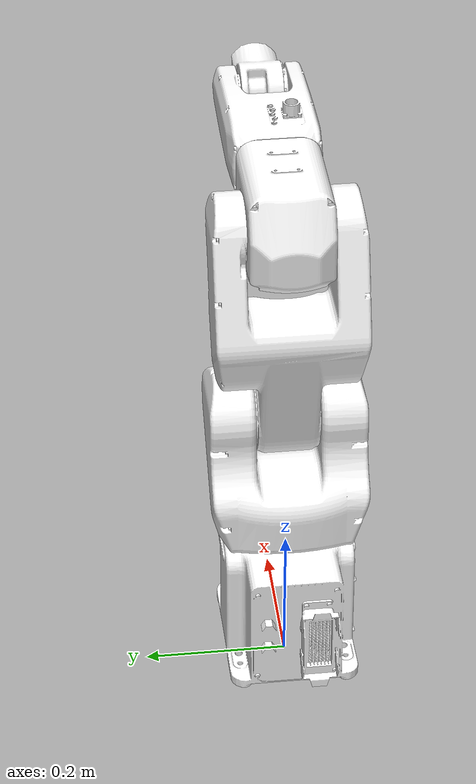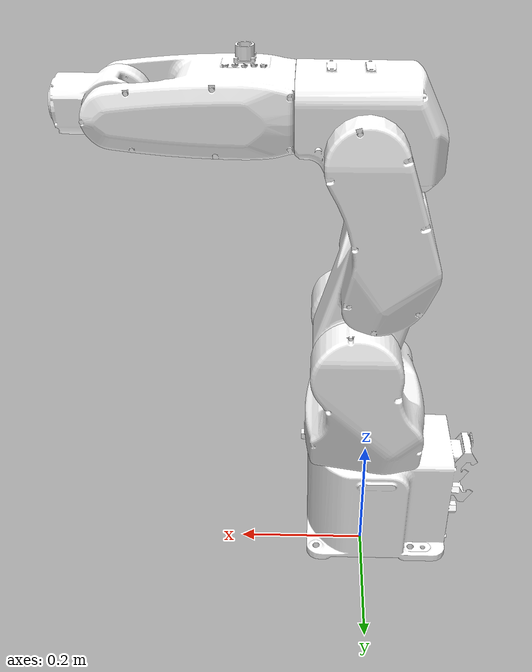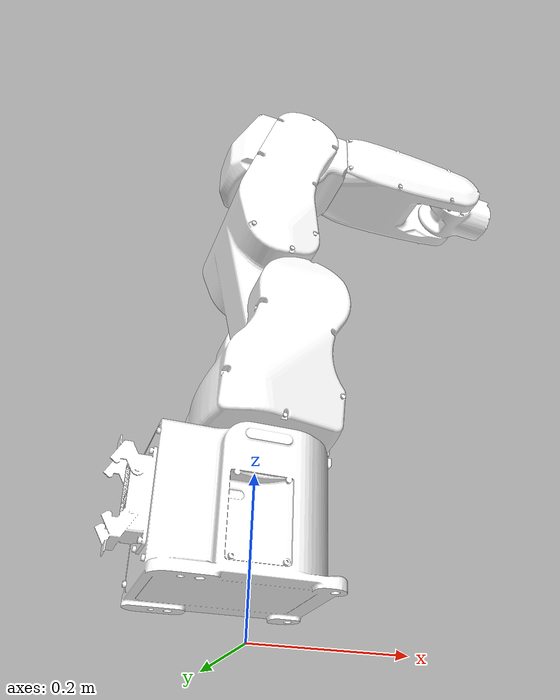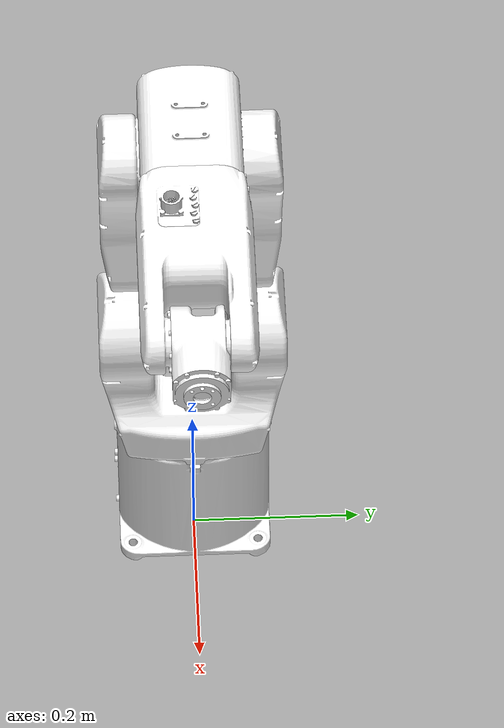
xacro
<?xml version="1.0"?>
<robot name="effortrobot" xmlns:xacro="http://www.ros.org/wiki/xacro">
 <xacro:property name="M_PI" value="3.1415926536"/>
 <link name="base_footprint"/>
  <joint name="joint_0" type="fixed">
    <origin xyz="0 0 0.0532" rpy="0 0 0" />
    <parent link="base_footprint" />
    <child link="base_link" />
  </joint>

  <link  name="base_link">
    <inertial>
      <origin xyz="-0.020139 -0.00029083 0.08761" rpy="0 0 0" />
      <mass  value="6.2633" />
      <inertia ixx="0.031742" ixy="-0.00025869" ixz="-0.0014605" iyy="0.040679" iyz="1.2511E-06" izz="0.035184" />
    </inertial>
    <visual>
      <origin xyz="0 0 0" rpy="0 0 0" />
      <geometry>
        <mesh  filename="package://effortrobot/meshes/base_link.STL" />
      </geometry>
      <material name="">
        <color rgba="1 1 1 1" />
      </material>
    </visual>
    <collision>
      <origin xyz="0 0 0"  rpy="0 0 0" />
      <geometry>
        <mesh  filename="package://effortrobot/meshes/base_link.STL" />
      </geometry>
    </collision>
  </link>
  <link name="link1">
    <inertial>
      <origin xyz="0.013985 0.097968 -0.00035209" rpy="0 0 0" />
      <mass  value="2.4535" />
      <inertia ixx="0.026746" ixy="0.0013345" ixz="3.9E-05" iyy="0.019626"  iyz="-5.0659E-06"  izz="0.01608" />
    </inertial>
    <visual>
      <origin  xyz="0 0 0"  rpy="0 0 0" />
      <geometry>
        <mesh  filename="package://effortrobot/meshes/link1.STL" />
      </geometry>
      <material name="">
        <color  rgba="1 1 1 1" />
      </material>
    </visual>
    <collision>
      <origin  xyz="0 0 0"  rpy="0 0 0" />
      <geometry>
        <mesh  filename="package://effortrobot/meshes/link1.STL" />
      </geometry>
    </collision>
  </link>
  <joint name="joint1" type="revolute">
    <origin xyz="0.025 0 0.1865" rpy="1.5708 0 3.1416" />
    <parent link="base_link" />
    <child  link="link1" />
    <axis xyz="0 0 -1" />
    <limit  lower="-3.14" upper="3.14"  effort="0" velocity="0" />
  </joint>
  <link name="link2">
    <inertial>
      <origin xyz="0.021883 0.1341 0.00022363" rpy="0 0 0" />
      <mass value="5.0459" />
      <inertia  ixx="0.064667"  ixy="-0.0013746"  ixz="2.9716E-05"  iyy="0.023288"  iyz="-1.4596E-05"  izz="0.053178" />
    </inertial>
    <visual>
      <origin xyz="0 0 0" rpy="0 0 0" />
      <geometry>
        <mesh  filename="package://effortrobot/meshes/link2.STL" />
      </geometry>
      <material name="">
        <color rgba="1 1 1 1" />
      </material>
    </visual>
    <collision>
      <origin xyz="0 0 0" rpy="0 0 0" />
      <geometry>
        <mesh filename="package://effortrobot/meshes/link2.STL" />
      </geometry>
    </collision>
  </link>
  <joint name="joint2" type="revolute">
    <origin xyz="0 0.172 0" rpy="0 0 0" />
    <parent link="link1" />
    <child link="link2" />
    <axis xyz="0 0 -1" />
    <limit lower="-3.14" upper="3.14" effort="0" velocity="0" />
  </joint>
  <link name="link3">
    <inertial>
      <origin  xyz="0.013477 0.014234 0.0011895"  rpy="0 0 0" />
      <mass value="2.1368" />
      <inertia  ixx="0.0051632" ixy="0.00051201"  ixz="3.036E-05" iyy="0.0062051"  iyz="1.8355E-05"  izz="0.006532" />
    </inertial>
    <visual>
      <origin xyz="0 0 0" rpy="0 0 0" />
      <geometry>
        <mesh filename="package://effortrobot/meshes/link3.STL" />
      </geometry>
      <material  name="">
        <color  rgba="1 1 1 1" />
      </material>
    </visual>
    <collision>
      <origin  xyz="0 0 0" rpy="0 0 0" />
      <geometry>
        <mesh filename="package://effortrobot/meshes/link3.STL" />
      </geometry>
    </collision>
  </link>
  <joint  name="joint3"  type="revolute">
    <origin xyz="0 0.295 0" rpy="0 0 0" />
    <parent link="link2" />
    <child link="link3" />
    <axis xyz="0 0 -1" />
    <limit lower="0" upper="3.14"  effort="0" velocity="0" />
  </joint>
  <link  name="link4">
    <inertial>
      <origin   xyz="-0.11577 0.0015716 -0.0018394"  rpy="0 0 0" />
      <mass value="0.9978" />
      <inertia  ixx="0.0025951"  ixy="-1.6888E-05"   ixz="-1.4384E-05" iyy="0.0069048" iyz="1.6198E-05"  izz="0.0056561" />
    </inertial>
    <visual>
      <origin xyz="0 0 0"  rpy="0 0 0" />
      <geometry>
        <mesh  filename="package://effortrobot/meshes/link4.STL" />
      </geometry>
      <material  name="">
        <color  rgba="1 1 1 1" />
      </material>
    </visual>
    <collision>
      <origin xyz="0 0 0"   rpy="0 0 0" />
      <geometry>
        <mesh filename="package://effortrobot/meshes/link4.STL" />
      </geometry>
    </collision>
  </link>
  <joint  name="joint4"  type="revolute">
    <origin  xyz="-0.075801 0.037406 0.0005"  rpy="0 0 0" />
    <parent  link="link3" />
    <child   link="link4" />
    <axis xyz="0.99999 -0.0053555 0" />
    <limit  lower="-3.14" upper="3.14" effort="0" velocity="0" />
  </joint>
  <link name="link5">
    <inertial>
      <origin  xyz="-0.023027 0.00013031 -0.0020434"  rpy="0 0 0" />
      <mass  value="0.36404" />
      <inertia  ixx="0.00023315"  ixy="7.616E-07"  ixz="2.5096E-05" iyy="0.00040368"  iyz="-2.4878E-07" izz="0.00042927" />
    </inertial>
    <visual>
      <origin  xyz="0 0 0" rpy="0 0 0" />
      <geometry>
        <mesh  filename="package://effortrobot/meshes/link5.STL" />
      </geometry>
      <material  name="">
        <color rgba="1 1 1 1" />
      </material>
    </visual>
    <collision>
      <origin  xyz="0 0 0" rpy="0 0 0" />
      <geometry>
        <mesh   filename="package://effortrobot/meshes/link5.STL" />
      </geometry>
    </collision>
  </link>
  <joint name="joint5"
    type="revolute">
    <origin  xyz="-0.2185 0.0011724 -0.0005" rpy="0 0 0" />
    <parent link="link4" />
    <child  link="link5" />
    <axis xyz="2.4265E-05 0.0045308 -0.99999" />
    <limit lower="-3.14" upper="3.14" effort="0" velocity="0" />
  </joint>
  <link  name="link6">
    <inertial>
      <origin  xyz="0.002248 -0.00037082 0.00049838" rpy="0 0 0" />
      <mass value="0.0039034" />
      <inertia  ixx="9.7517E-07"  ixy="-2.516E-09"  ixz="5.4388E-13" iyy="5.054E-07" iyz="1.0155E-10" izz="4.8297E-07" />
    </inertial>
    <visual>
      <origin  xyz="0 0 0"  rpy="0 0 0" />
      <geometry>
        <mesh filename="package://effortrobot/meshes/link6.STL" />
      </geometry>
      <material name="">
        <color  rgba="1 1 1 1" />
      </material>
    </visual>
    <collision>
      <origin  xyz="0 0 0"  rpy="0 0 0" />
      <geometry>
        <mesh  filename="package://effortrobot/meshes/link6.STL" />
      </geometry>
    </collision>
  </link>
  <joint name="joint6" type="revolute">
    <origin xyz="-0.078499 0.0004204 0" rpy="0 0 0" />
    <parent  link="link5" />
    <child link="link6" />
    <axis  xyz="-0.99999 0.0053555 0" />
    <limit   lower="-3.14"   upper="3.14"  effort="0" velocity="0" />
  </joint>

<!-- Transmissions for ROS Control -->
  <xacro:macro name="transmission_block" params="joint_name">
    <transmission name="tran1">
      <type>transmission_interface/SimpleTransmission</type>
      <joint name="${joint_name}">
        <hardwareInterface>hardware_interface/PositionJointInterface</hardwareInterface>
      </joint>
      <actuator name="motor1">
        <hardwareInterface>hardware_interface/PositionJointInterface</hardwareInterface>
        <mechanicalReduction>1</mechanicalReduction>
      </actuator>
    </transmission>
  </xacro:macro>

  <xacro:transmission_block joint_name="joint1"/>
  <xacro:transmission_block joint_name="joint2"/>
  <xacro:transmission_block joint_name="joint3"/>
  <xacro:transmission_block joint_name="joint4"/>
  <xacro:transmission_block joint_name="joint5"/>
  <xacro:transmission_block joint_name="joint6"/>

  <!-- ros_control plugin -->
  <gazebo>
    <plugin name="gazebo_ros_control" filename="libgazebo_ros_control.so">
      <robotNamespace>/effortrobot</robotNamespace>
    </plugin>
  </gazebo>
</robot>
